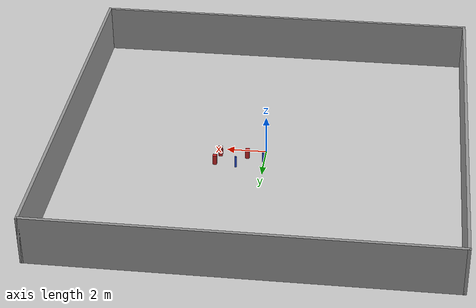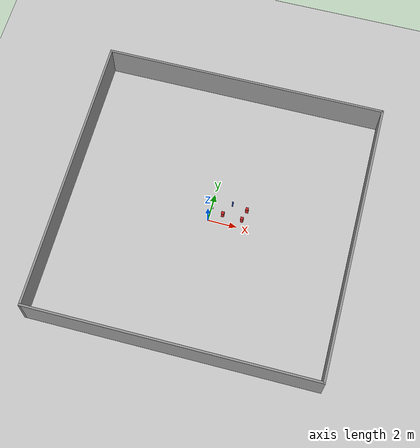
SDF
<sdf version="1.6">
 <world name="default">
  <model name="ground_plane">
   <static>1</static>
   <link name="link">
    <collision name="collision">
     <geometry><plane><normal>0 0 1</normal><size>100 100</size></plane></geometry>
     <surface><friction><ode><mu>100</mu><mu2>50</mu2></ode></friction></surface>
    </collision>
    <visual name="visual">
     <cast_shadows>0</cast_shadows>
     <geometry><plane><normal>0 0 1</normal><size>100 100</size></plane></geometry>
     <material>
      <script><uri>file://media/materials/scripts/gazebo.material</uri><name>Gazebo/Grey</name></script>
     </material>
    </visual>
   </link>
  </model>
  <model name="20x20_walls">
   <pose>0.044518 0.1761 0 0 -0 0</pose>
   <link name="Wall_1">
    <collision name="Wall_1_Collision">
     <geometry><box><size>20 0.15 2.5</size></box></geometry>
     <pose>0 0 1.25 0 -0 0</pose>
    </collision>
    <visual name="Wall_1_Visual">
     <pose>0 0 1.25 0 -0 0</pose>
     <geometry><box><size>20 0.15 2.5</size></box></geometry>
     <material>
      <script><uri>file://media/materials/scripts/gazebo.material</uri><name>Gazebo/Grey</name></script>
      <ambient>0.976471 0.992157 1 1</ambient>
     </material>
     <meta><layer>0</layer></meta>
    </visual>
    <pose>0 9.925 0 0 -0 0</pose>
   </link>
   <link name="Wall_3">
    <collision name="Wall_3_Collision">
     <geometry><box><size>20 0.15 2.5</size></box></geometry>
     <pose>0 0 1.25 0 -0 0</pose>
    </collision>
    <visual name="Wall_3_Visual">
     <pose>0 0 1.25 0 -0 0</pose>
     <geometry><box><size>20 0.15 2.5</size></box></geometry>
     <material>
      <script><uri>file://media/materials/scripts/gazebo.material</uri><name>Gazebo/Grey</name></script>
      <ambient>0.976471 0.992157 1 1</ambient>
     </material>
     <meta><layer>0</layer></meta>
    </visual>
    <pose>9.925 0 0 0 0 -1.5708</pose>
   </link>
   <link name="Wall_4">
    <collision name="Wall_4_Collision">
     <geometry><box><size>20 0.15 2.5</size></box></geometry>
     <pose>0 0 1.25 0 -0 0</pose>
    </collision>
    <visual name="Wall_4_Visual">
     <pose>0 0 1.25 0 -0 0</pose>
     <geometry><box><size>20 0.15 2.5</size></box></geometry>
     <material>
      <script><uri>file://media/materials/scripts/gazebo.material</uri><name>Gazebo/Grey</name></script>
      <ambient>0.976471 0.992157 1 1</ambient>
     </material>
     <meta><layer>0</layer></meta>
    </visual>
    <pose>0 -9.925 0 0 -0 3.14159</pose>
   </link>
   <link name="Wall_5">
    <collision name="Wall_5_Collision">
     <geometry><box><size>20 0.15 2.5</size></box></geometry>
     <pose>0 0 1.25 0 -0 0</pose>
    </collision>
    <visual name="Wall_5_Visual">
     <pose>0 0 1.25 0 -0 0</pose>
     <geometry><box><size>20 0.15 2.5</size></box></geometry>
     <material>
      <script><uri>file://media/materials/scripts/gazebo.material</uri><name>Gazebo/Grey</name></script>
      <ambient>0.976471 0.992157 1 1</ambient>
     </material>
     <meta><layer>0</layer></meta>
    </visual>
    <pose>-9.925 0 0 0 -0 1.5708</pose>
   </link>
   <static>1</static>
  </model>
  <model name="square_post_obstacle39">
   <static>0</static>
   <link name="link">
    <pose>0 0 0.25 0 -0 0</pose>
    <inertial>
     <mass>100</mass>
     <inertia>
      <ixx>0.166667</ixx>
      <ixy>0</ixy>
      <ixz>0</ixz>
      <iyy>0.166667</iyy>
      <iyz>0</iyz>
      <izz>0.166667</izz>
     </inertia>
    </inertial>
    <collision name="collision"><geometry><box><size>0.2 0.2 0.5</size></box></geometry></collision>
    <visual name="visual">
     <geometry><box><size>0.2 0.2 0.5</size></box></geometry>
     <material>
      <script><name>Gazebo/Red</name><uri>file://media/materials/scripts/gazebo.material</uri></script>
     </material>
    </visual>
   </link>
   <pose>0.880834 0.609657 0 -1e-06 7e-06 -0.000607</pose>
  </model>
  <model name="pole_obstacle42">
   <static>0</static>
   <link name="link">
    <pose>0 0 0.3 0 -0 0</pose>
    <inertial>
     <mass>1</mass>
     <inertia><ixx>0.145833</ixx><ixy>0</ixy><ixz>0</ixz><iyy>0.145833</iyy><iyz>0</iyz><izz>0.125</izz></inertia>
    </inertial>
    <collision name="collision">
     <geometry><cylinder><radius>0.05</radius><length>0.6</length></cylinder></geometry>
    </collision>
    <visual name="visual">
     <geometry><cylinder><radius>0.05</radius><length>0.6</length></cylinder></geometry>
     <material>
      <script><name>Gazebo/Blue</name><uri>file://media/materials/scripts/gazebo.material</uri></script>
     </material>
    </visual>
   </link>
   <pose>0.0521 0.922775 -5e-06 0 0 -5.5e-05</pose>
  </model>
  <model name="pole_obstacle47">
   <static>0</static>
   <link name="link">
    <pose>0 0 0.3 0 -0 0</pose>
    <inertial>
     <mass>1</mass>
     <inertia><ixx>0.145833</ixx><ixy>0</ixy><ixz>0</ixz><iyy>0.145833</iyy><iyz>0</iyz><izz>0.125</izz></inertia>
    </inertial>
    <collision name="collision">
     <geometry><cylinder><radius>0.05</radius><length>0.6</length></cylinder></geometry>
    </collision>
    <visual name="visual">
     <geometry><cylinder><radius>0.05</radius><length>0.6</length></cylinder></geometry>
     <material>
      <script><name>Gazebo/Blue</name><uri>file://media/materials/scripts/gazebo.material</uri></script>
     </material>
    </visual>
   </link>
   <pose>1.36773 1.49698 -5e-06 0 0 -1.6e-05</pose>
  </model>
  <model name="square_post_obstacle103">
   <static>0</static>
   <link name="link">
    <pose>0 0 0.25 0 -0 0</pose>
    <inertial>
     <mass>100</mass>
     <inertia>
      <ixx>0.166667</ixx>
      <ixy>0</ixy>
      <ixz>0</ixz>
      <iyy>0.166667</iyy>
      <iyz>0</iyz>
      <izz>0.166667</izz>
     </inertia>
    </inertial>
    <collision name="collision"><geometry><box><size>0.2 0.2 0.5</size></box></geometry></collision>
    <visual name="visual">
     <geometry><box><size>0.2 0.2 0.5</size></box></geometry>
     <material>
      <script><name>Gazebo/Red</name><uri>file://media/materials/scripts/gazebo.material</uri></script>
     </material>
    </visual>
   </link>
   <pose>2.25686 0.540824 0 -1e-06 7e-06 -0.000607</pose>
  </model>
  <model name="square_post_obstacle117">
   <static>0</static>
   <link name="link">
    <pose>0 0 0.25 0 -0 0</pose>
    <inertial>
     <mass>100</mass>
     <inertia>
      <ixx>0.166667</ixx>
      <ixy>0</ixy>
      <ixz>0</ixz>
      <iyy>0.166667</iyy>
      <iyz>0</iyz>
      <izz>0.166667</izz>
     </inertia>
    </inertial>
    <collision name="collision"><geometry><box><size>0.2 0.2 0.5</size></box></geometry></collision>
    <visual name="visual">
     <geometry><box><size>0.2 0.2 0.5</size></box></geometry>
     <material>
      <script><name>Gazebo/Red</name><uri>file://media/materials/scripts/gazebo.material</uri></script>
     </material>
    </visual>
   </link>
   <pose>2.43703 1.32332 0 -1e-06 7e-06 -0.000607</pose>
  </model>
 </world>
</sdf>
